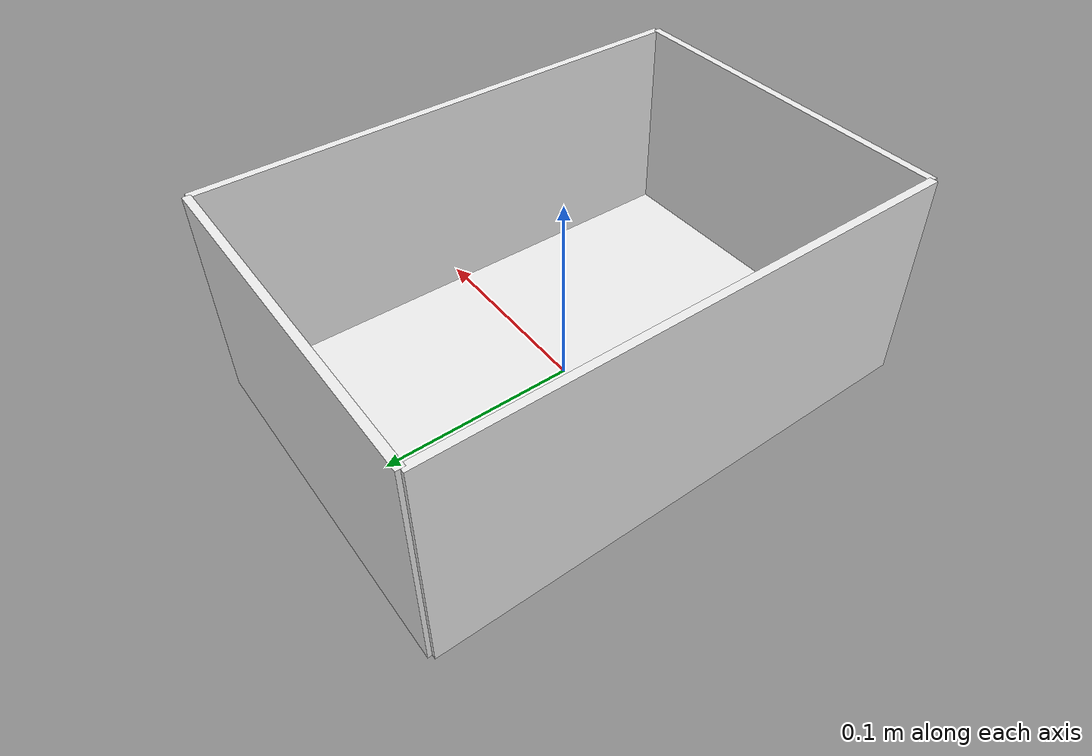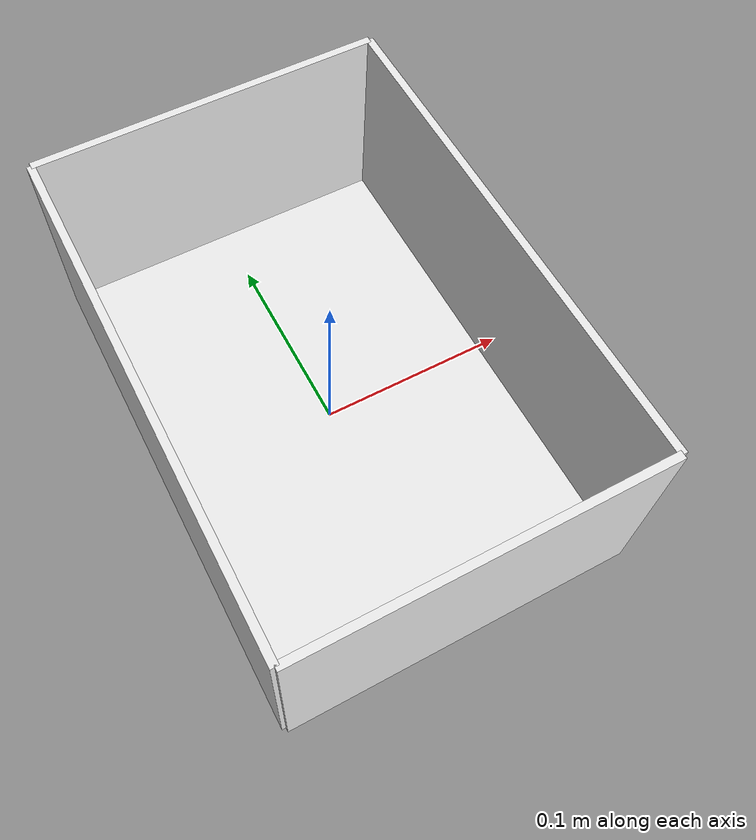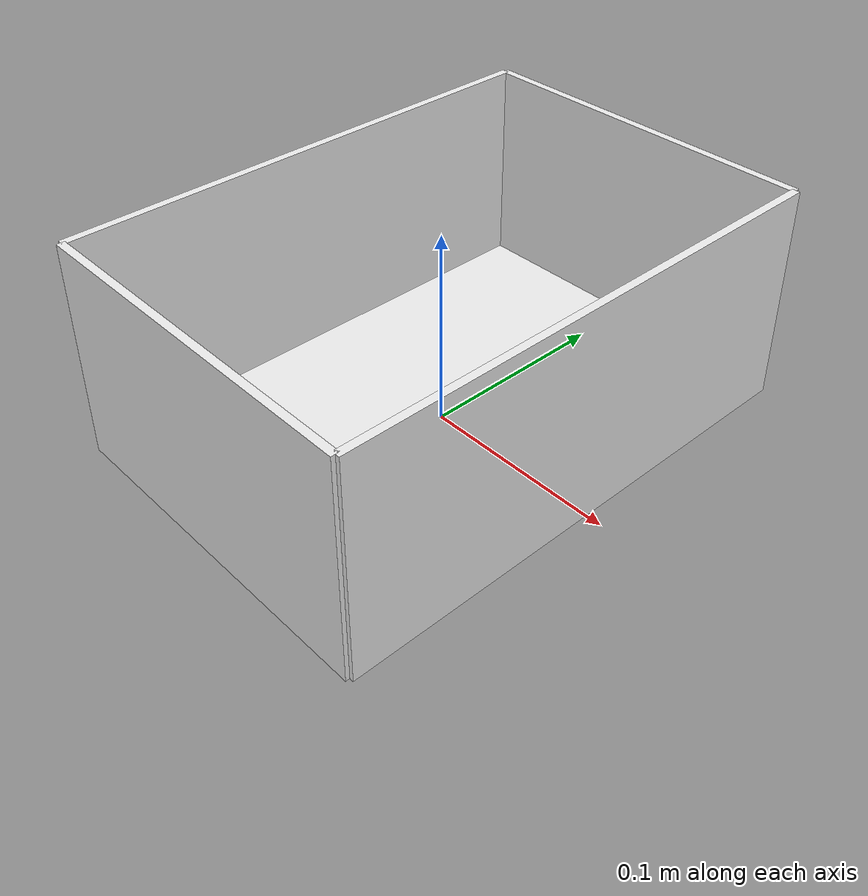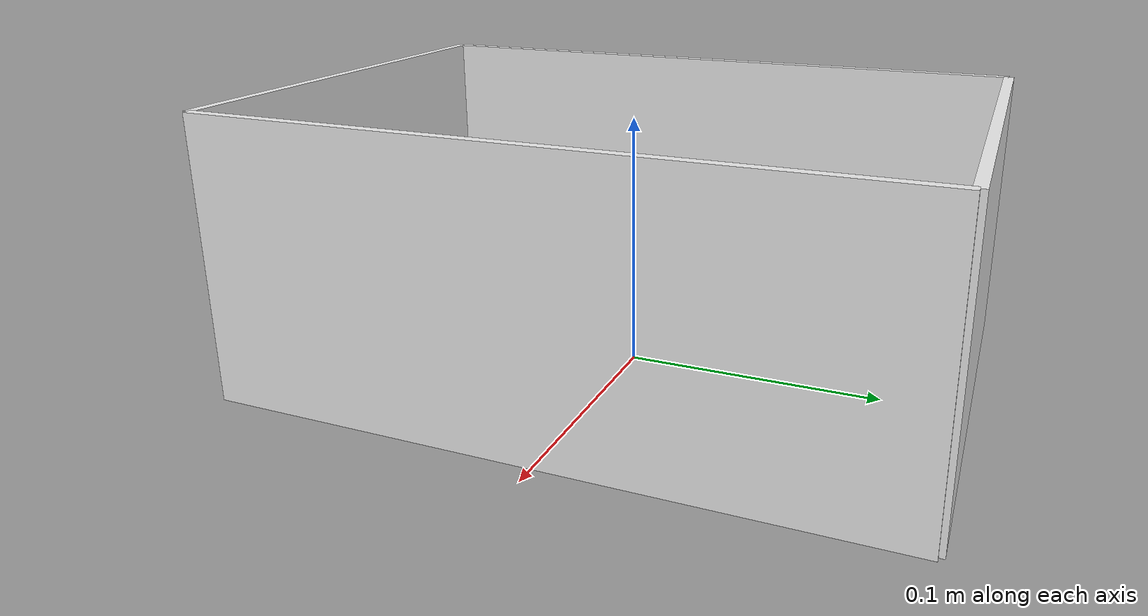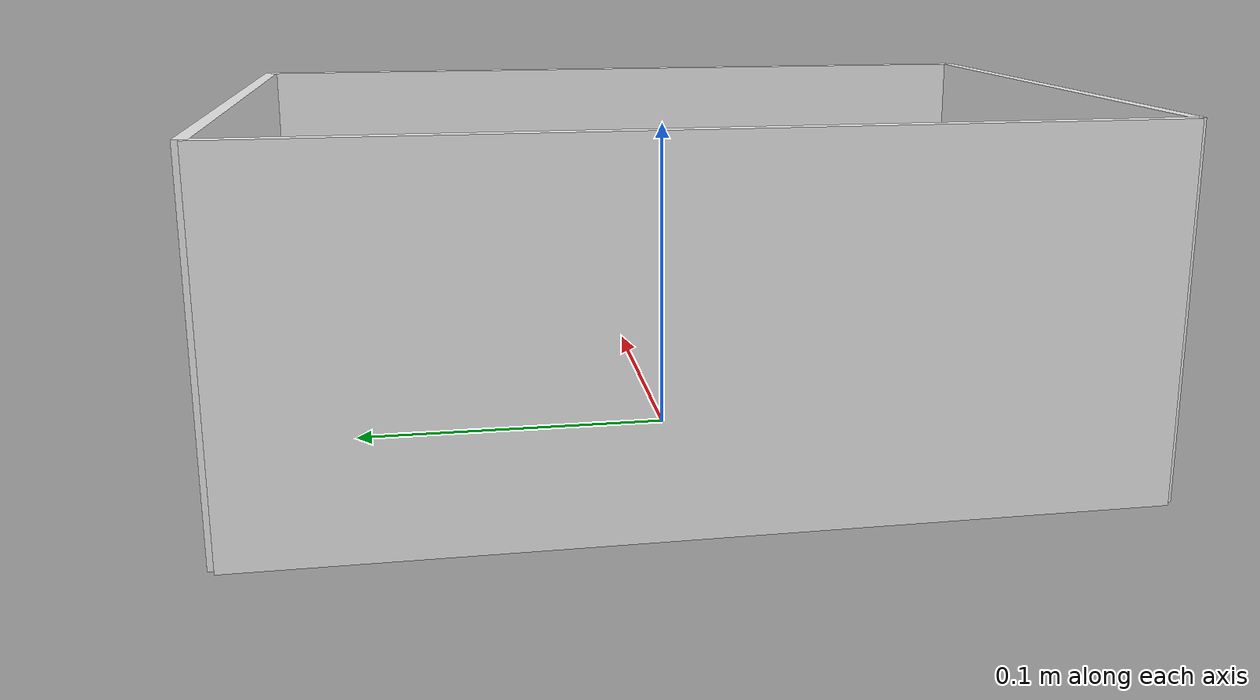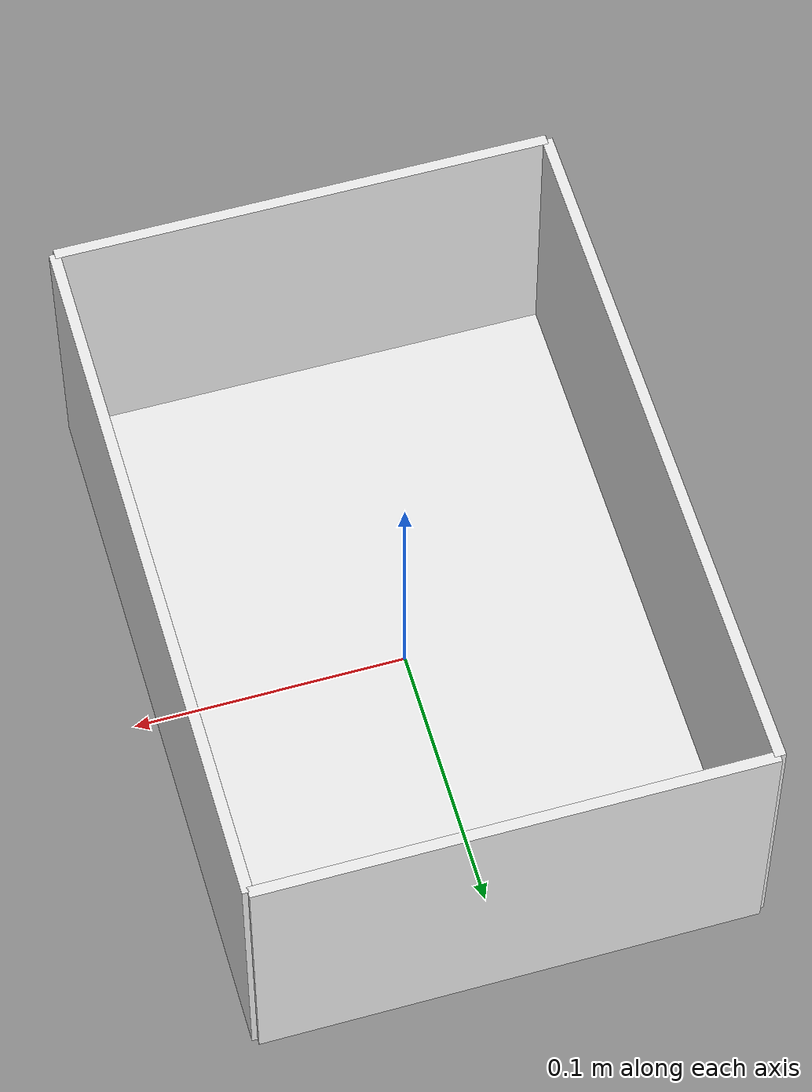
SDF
<?xml version="1.0" ?>
<sdf version="1.5">
  <model name="wrc_container_b">
    <static>true</static>
    <link name="link">
      <inertial>
        <mass>0.0</mass>
        <inertia>
          <ixx>1</ixx>
          <ixy>0.0</ixy>
          <ixz>0.0</ixz>
          <iyy>1</iyy>
          <iyz>0.0</iyz>
          <izz>1</izz>
        </inertia>
      </inertial>
      <collision name="bottom">
        <pose>0 0 0.002 0 0 0</pose>
        <geometry>
          <box>
            <size>0.18 0.26 0.004</size>
          </box>
        </geometry>
      </collision>
      <visual name="bottom_v">
        <pose>0 0 0.002 0 0 0</pose>
        <geometry>
          <box>
            <size>0.18 0.26 0.004</size>
          </box>
        </geometry>
        <material>
          <script>
            <uri>file://media/materials/scripts/gazebo.material</uri>
            <name>Gazebo/White</name>
          </script>
        </material>
      </visual>
      <collision name="front">
        <pose>0 0.13 0.055 0 0 0</pose>
        <geometry>
          <box>
            <size>0.18 0.004 0.11</size>
          </box>
        </geometry>
      </collision>
      <visual name="front_v">
        <pose>0 0.13 0.055 0 0 0</pose>
        <geometry>
          <box>
            <size>0.18 0.004 0.11</size>
          </box>
        </geometry>
        <material>
          <script>
            <uri>file://media/materials/scripts/gazebo.material</uri>
            <name>Gazebo/White</name>
          </script>
        </material>
      </visual>
      <collision name="back">
        <pose>0 -0.13 0.055 0 0 0</pose>
        <geometry>
          <box>
            <size>0.18 0.004 0.11</size>
          </box>
        </geometry>
      </collision>
      <visual name="back_v">
        <pose>0 -0.13 0.055 0 0 0</pose>
        <geometry>
          <box>
            <size>0.18 0.004 0.11</size>
          </box>
        </geometry>
        <material>
          <script>
            <uri>file://media/materials/scripts/gazebo.material</uri>
            <name>Gazebo/White</name>
          </script>
        </material>
      </visual>
      <collision name="left">
        <pose>0.09 0 0.055 0 0 0</pose>
        <geometry>
          <box>
            <size>0.004 0.26 0.11</size>
          </box>
        </geometry>
      </collision>
      <visual name="left_v">
        <pose>0.09 0 0.055 0 0 0</pose>
        <geometry>
          <box>
            <size>0.004 0.26 0.11</size>
          </box>
        </geometry>
        <material>
          <script>
            <uri>file://media/materials/scripts/gazebo.material</uri>
            <name>Gazebo/White</name>
          </script>
        </material>
      </visual>
      <collision name="right">
        <pose>-0.09 0 0.055 0 0 0</pose>
        <geometry>
          <box>
            <size>0.004 0.26 0.11</size>
          </box>
        </geometry>
      </collision>
      <visual name="right_v">
        <pose>-0.09 0 0.055 0 0 0</pose>
        <geometry>
          <box>
            <size>0.004 0.26 0.11</size>
          </box>
        </geometry>
        <material>
          <script>
            <uri>file://media/materials/scripts/gazebo.material</uri>
            <name>Gazebo/White</name>
          </script>
        </material>
      </visual>
    </link>
  </model>
</sdf>
